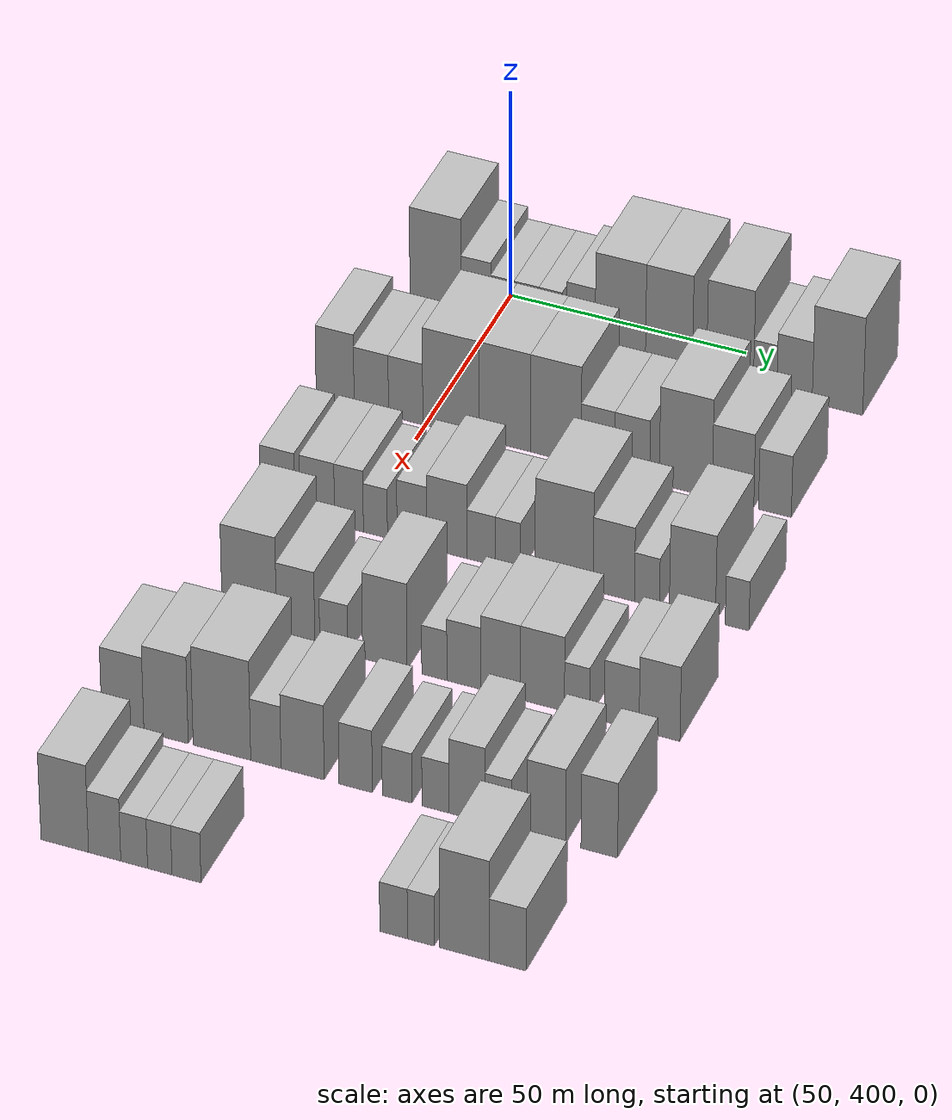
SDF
<sdf version="1.6">
 <world name="default">
  <model name="building_96">
   <static>1</static>
   <pose>50.0000 387.8352 0 0.000000 0.000000 0.000000</pose>
   <link name="link">
    <pose>0 0 12.00 0 0 0</pose>
    <collision name="collision"><geometry><box><size>20.0000 10.9163 24.0000</size></box></geometry></collision>
    <visual name="visual">
     <cast_shadows>0</cast_shadows>
     <geometry><box><size>20.0000 10.9163 24.0000</size></box></geometry>
     <material>
      <script>
       <uri>model://HANNAS_wall/materials/scripts</uri>
       <uri>model://HANNAS_wall/materials/textures</uri>
       <name>vrc/HANNAS_wall</name>
      </script>
     </material>
    </visual>
   </link>
  </model>
  <model name="building_97">
   <static>1</static>
   <pose>50.0000 396.4838 0 0.000000 0.000000 0.000000</pose>
   <link name="link">
    <pose>0 0 7.50 0 0 0</pose>
    <collision name="collision"><geometry><box><size>20.0000 6.3810 15.0000</size></box></geometry></collision>
    <visual name="visual">
     <cast_shadows>0</cast_shadows>
     <geometry><box><size>20.0000 6.3810 15.0000</size></box></geometry>
     <material>
      <script>
       <uri>model://HANNAS_wall/materials/scripts</uri>
       <uri>model://HANNAS_wall/materials/textures</uri>
       <name>vrc/HANNAS_wall</name>
      </script>
     </material>
    </visual>
   </link>
  </model>
  <model name="building_98">
   <static>1</static>
   <pose>50.0000 402.1761 0 0.000000 0.000000 0.000000</pose>
   <link name="link">
    <pose>0 0 6.00 0 0 0</pose>
    <collision name="collision"><geometry><box><size>20.0000 5.0036 12.0000</size></box></geometry></collision>
    <visual name="visual">
     <cast_shadows>0</cast_shadows>
     <geometry><box><size>20.0000 5.0036 12.0000</size></box></geometry>
     <material>
      <script>
       <uri>model://HANNAS_wall/materials/scripts</uri>
       <uri>model://HANNAS_wall/materials/textures</uri>
       <name>vrc/HANNAS_wall</name>
      </script>
     </material>
    </visual>
   </link>
  </model>
  <model name="building_99">
   <static>1</static>
   <pose>50.0000 407.3361 0 0.000000 0.000000 0.000000</pose>
   <link name="link">
    <pose>0 0 6.00 0 0 0</pose>
    <collision name="collision"><geometry><box><size>20.0000 5.3164 12.0000</size></box></geometry></collision>
    <visual name="visual">
     <cast_shadows>0</cast_shadows>
     <geometry><box><size>20.0000 5.3164 12.0000</size></box></geometry>
     <material>
      <script>
       <uri>model://HANNAS_wall/materials/scripts</uri>
       <uri>model://HANNAS_wall/materials/textures</uri>
       <name>vrc/HANNAS_wall</name>
      </script>
     </material>
    </visual>
   </link>
  </model>
  <model name="building_100">
   <static>1</static>
   <pose>50.0000 412.4505 0 0.000000 0.000000 0.000000</pose>
   <link name="link">
    <pose>0 0 6.00 0 0 0</pose>
    <collision name="collision"><geometry><box><size>20.0000 4.9125 12.0000</size></box></geometry></collision>
    <visual name="visual">
     <cast_shadows>0</cast_shadows>
     <geometry><box><size>20.0000 4.9125 12.0000</size></box></geometry>
     <material>
      <script>
       <uri>model://HANNAS_wall/materials/scripts</uri>
       <uri>model://HANNAS_wall/materials/textures</uri>
       <name>vrc/HANNAS_wall</name>
      </script>
     </material>
    </visual>
   </link>
  </model>
  <model name="building_101">
   <static>1</static>
   <pose>50.0000 418.9141 0 0.000000 0.000000 0.000000</pose>
   <link name="link">
    <pose>0 0 7.50 0 0 0</pose>
    <collision name="collision"><geometry><box><size>20.0000 6.0148 15.0000</size></box></geometry></collision>
    <visual name="visual">
     <cast_shadows>0</cast_shadows>
     <geometry><box><size>20.0000 6.0148 15.0000</size></box></geometry>
     <material>
      <script>
       <uri>model://HANNAS_wall/materials/scripts</uri>
       <uri>model://HANNAS_wall/materials/textures</uri>
       <name>vrc/HANNAS_wall</name>
      </script>
     </material>
    </visual>
   </link>
  </model>
  <model name="building_102">
   <static>1</static>
   <pose>50.0000 427.2536 0 0.000000 0.000000 0.000000</pose>
   <link name="link">
    <pose>0 0 12.00 0 0 0</pose>
    <collision name="collision"><geometry><box><size>20.0000 10.6642 24.0000</size></box></geometry></collision>
    <visual name="visual">
     <cast_shadows>0</cast_shadows>
     <geometry><box><size>20.0000 10.6642 24.0000</size></box></geometry>
     <material>
      <script>
       <uri>model://HANNAS_wall/materials/scripts</uri>
       <uri>model://HANNAS_wall/materials/textures</uri>
       <name>vrc/HANNAS_wall</name>
      </script>
     </material>
    </visual>
   </link>
  </model>
  <model name="building_103">
   <static>1</static>
   <pose>50.0000 437.5339 0 0.000000 0.000000 0.000000</pose>
   <link name="link">
    <pose>0 0 12.00 0 0 0</pose>
    <collision name="collision"><geometry><box><size>20.0000 9.8964 24.0000</size></box></geometry></collision>
    <visual name="visual">
     <cast_shadows>0</cast_shadows>
     <geometry><box><size>20.0000 9.8964 24.0000</size></box></geometry>
     <material>
      <script>
       <uri>model://HANNAS_wall/materials/scripts</uri>
       <uri>model://HANNAS_wall/materials/textures</uri>
       <name>vrc/HANNAS_wall</name>
      </script>
     </material>
    </visual>
   </link>
  </model>
  <model name="building_104">
   <static>1</static>
   <pose>50.0000 450.4023 0 0.000000 0.000000 0.000000</pose>
   <link name="link">
    <pose>0 0 12.00 0 0 0</pose>
    <collision name="collision"><geometry><box><size>20.0000 9.8404 24.0000</size></box></geometry></collision>
    <visual name="visual">
     <cast_shadows>0</cast_shadows>
     <geometry><box><size>20.0000 9.8404 24.0000</size></box></geometry>
     <material>
      <script>
       <uri>model://HANNAS_wall/materials/scripts</uri>
       <uri>model://HANNAS_wall/materials/textures</uri>
       <name>vrc/HANNAS_wall</name>
      </script>
     </material>
    </visual>
   </link>
  </model>
  <model name="building_105">
   <static>1</static>
   <pose>50.0000 457.7745 0 0.000000 0.000000 0.000000</pose>
   <link name="link">
    <pose>0 0 6.00 0 0 0</pose>
    <collision name="collision"><geometry><box><size>20.0000 4.9039 12.0000</size></box></geometry></collision>
    <visual name="visual">
     <cast_shadows>0</cast_shadows>
     <geometry><box><size>20.0000 4.9039 12.0000</size></box></geometry>
     <material>
      <script>
       <uri>model://HANNAS_wall/materials/scripts</uri>
       <uri>model://HANNAS_wall/materials/textures</uri>
       <name>vrc/HANNAS_wall</name>
      </script>
     </material>
    </visual>
   </link>
  </model>
  <model name="building_106">
   <static>1</static>
   <pose>50.0000 463.9349 0 0.000000 0.000000 0.000000</pose>
   <link name="link">
    <pose>0 0 7.50 0 0 0</pose>
    <collision name="collision"><geometry><box><size>20.0000 7.4169 15.0000</size></box></geometry></collision>
    <visual name="visual">
     <cast_shadows>0</cast_shadows>
     <geometry><box><size>20.0000 7.4169 15.0000</size></box></geometry>
     <material>
      <script>
       <uri>model://HANNAS_wall/materials/scripts</uri>
       <uri>model://HANNAS_wall/materials/textures</uri>
       <name>vrc/HANNAS_wall</name>
      </script>
     </material>
    </visual>
   </link>
  </model>
  <model name="building_107">
   <static>1</static>
   <pose>50.0000 472.9136 0 0.000000 0.000000 0.000000</pose>
   <link name="link">
    <pose>0 0 12.00 0 0 0</pose>
    <collision name="collision"><geometry><box><size>20.0000 10.5405 24.0000</size></box></geometry></collision>
    <visual name="visual">
     <cast_shadows>0</cast_shadows>
     <geometry><box><size>20.0000 10.5405 24.0000</size></box></geometry>
     <material>
      <script>
       <uri>model://HANNAS_wall/materials/scripts</uri>
       <uri>model://HANNAS_wall/materials/textures</uri>
       <name>vrc/HANNAS_wall</name>
      </script>
     </material>
    </visual>
   </link>
  </model>
  <model name="building_221">
   <static>1</static>
   <pose>85.0000 380.9296 0 0.000000 0.000000 0.000000</pose>
   <link name="link">
    <pose>0 0 9.00 0 0 0</pose>
    <collision name="collision"><geometry><box><size>20.0000 8.0621 18.0000</size></box></geometry></collision>
    <visual name="visual">
     <cast_shadows>0</cast_shadows>
     <geometry><box><size>20.0000 8.0621 18.0000</size></box></geometry>
     <material>
      <script>
       <uri>model://HANNAS_wall/materials/scripts</uri>
       <uri>model://HANNAS_wall/materials/textures</uri>
       <name>vrc/HANNAS_wall</name>
      </script>
     </material>
    </visual>
   </link>
  </model>
  <model name="building_222">
   <static>1</static>
   <pose>85.0000 388.6045 0 0.000000 0.000000 0.000000</pose>
   <link name="link">
    <pose>0 0 7.50 0 0 0</pose>
    <collision name="collision"><geometry><box><size>20.0000 7.2877 15.0000</size></box></geometry></collision>
    <visual name="visual">
     <cast_shadows>0</cast_shadows>
     <geometry><box><size>20.0000 7.2877 15.0000</size></box></geometry>
     <material>
      <script>
       <uri>model://HANNAS_wall/materials/scripts</uri>
       <uri>model://HANNAS_wall/materials/textures</uri>
       <name>vrc/HANNAS_wall</name>
      </script>
     </material>
    </visual>
   </link>
  </model>
  <model name="building_223">
   <static>1</static>
   <pose>85.0000 395.8790 0 0.000000 0.000000 0.000000</pose>
   <link name="link">
    <pose>0 0 7.50 0 0 0</pose>
    <collision name="collision"><geometry><box><size>20.0000 7.2612 15.0000</size></box></geometry></collision>
    <visual name="visual">
     <cast_shadows>0</cast_shadows>
     <geometry><box><size>20.0000 7.2612 15.0000</size></box></geometry>
     <material>
      <script>
       <uri>model://HANNAS_wall/materials/scripts</uri>
       <uri>model://HANNAS_wall/materials/textures</uri>
       <name>vrc/HANNAS_wall</name>
      </script>
     </material>
    </visual>
   </link>
  </model>
  <model name="building_224">
   <static>1</static>
   <pose>85.0000 405.4130 0 0.000000 0.000000 0.000000</pose>
   <link name="link">
    <pose>0 0 12.00 0 0 0</pose>
    <collision name="collision"><geometry><box><size>20.0000 11.8067 24.0000</size></box></geometry></collision>
    <visual name="visual">
     <cast_shadows>0</cast_shadows>
     <geometry><box><size>20.0000 11.8067 24.0000</size></box></geometry>
     <material>
      <script>
       <uri>model://HANNAS_wall/materials/scripts</uri>
       <uri>model://HANNAS_wall/materials/textures</uri>
       <name>vrc/HANNAS_wall</name>
      </script>
     </material>
    </visual>
   </link>
  </model>
  <model name="building_225">
   <static>1</static>
   <pose>85.0000 416.7166 0 0.000000 0.000000 0.000000</pose>
   <link name="link">
    <pose>0 0 12.00 0 0 0</pose>
    <collision name="collision"><geometry><box><size>20.0000 10.8004 24.0000</size></box></geometry></collision>
    <visual name="visual">
     <cast_shadows>0</cast_shadows>
     <geometry><box><size>20.0000 10.8004 24.0000</size></box></geometry>
     <material>
      <script>
       <uri>model://HANNAS_wall/materials/scripts</uri>
       <uri>model://HANNAS_wall/materials/textures</uri>
       <name>vrc/HANNAS_wall</name>
      </script>
     </material>
    </visual>
   </link>
  </model>
  <model name="building_226">
   <static>1</static>
   <pose>85.0000 427.4245 0 0.000000 0.000000 0.000000</pose>
   <link name="link">
    <pose>0 0 12.00 0 0 0</pose>
    <collision name="collision"><geometry><box><size>20.0000 10.6154 24.0000</size></box></geometry></collision>
    <visual name="visual">
     <cast_shadows>0</cast_shadows>
     <geometry><box><size>20.0000 10.6154 24.0000</size></box></geometry>
     <material>
      <script>
       <uri>model://HANNAS_wall/materials/scripts</uri>
       <uri>model://HANNAS_wall/materials/textures</uri>
       <name>vrc/HANNAS_wall</name>
      </script>
     </material>
    </visual>
   </link>
  </model>
  <model name="building_227">
   <static>1</static>
   <pose>85.0000 436.2360 0 0.000000 0.000000 0.000000</pose>
   <link name="link">
    <pose>0 0 7.50 0 0 0</pose>
    <collision name="collision"><geometry><box><size>20.0000 7.0078 15.0000</size></box></geometry></collision>
    <visual name="visual">
     <cast_shadows>0</cast_shadows>
     <geometry><box><size>20.0000 7.0078 15.0000</size></box></geometry>
     <material>
      <script>
       <uri>model://HANNAS_wall/materials/scripts</uri>
       <uri>model://HANNAS_wall/materials/textures</uri>
       <name>vrc/HANNAS_wall</name>
      </script>
     </material>
    </visual>
   </link>
  </model>
  <model name="building_228">
   <static>1</static>
   <pose>85.0000 443.3682 0 0.000000 0.000000 0.000000</pose>
   <link name="link">
    <pose>0 0 7.50 0 0 0</pose>
    <collision name="collision"><geometry><box><size>20.0000 7.2565 15.0000</size></box></geometry></collision>
    <visual name="visual">
     <cast_shadows>0</cast_shadows>
     <geometry><box><size>20.0000 7.2565 15.0000</size></box></geometry>
     <material>
      <script>
       <uri>model://HANNAS_wall/materials/scripts</uri>
       <uri>model://HANNAS_wall/materials/textures</uri>
       <name>vrc/HANNAS_wall</name>
      </script>
     </material>
    </visual>
   </link>
  </model>
  <model name="building_229">
   <static>1</static>
   <pose>85.0000 454.4709 0 0.000000 0.000000 0.000000</pose>
   <link name="link">
    <pose>0 0 12.00 0 0 0</pose>
    <collision name="collision"><geometry><box><size>20.0000 10.9488 24.0000</size></box></geometry></collision>
    <visual name="visual">
     <cast_shadows>0</cast_shadows>
     <geometry><box><size>20.0000 10.9488 24.0000</size></box></geometry>
     <material>
      <script>
       <uri>model://HANNAS_wall/materials/scripts</uri>
       <uri>model://HANNAS_wall/materials/textures</uri>
       <name>vrc/HANNAS_wall</name>
      </script>
     </material>
    </visual>
   </link>
  </model>
  <model name="building_230">
   <static>1</static>
   <pose>85.0000 464.2405 0 0.000000 0.000000 0.000000</pose>
   <link name="link">
    <pose>0 0 9.00 0 0 0</pose>
    <collision name="collision"><geometry><box><size>20.0000 8.5903 18.0000</size></box></geometry></collision>
    <visual name="visual">
     <cast_shadows>0</cast_shadows>
     <geometry><box><size>20.0000 8.5903 18.0000</size></box></geometry>
     <material>
      <script>
       <uri>model://HANNAS_wall/materials/scripts</uri>
       <uri>model://HANNAS_wall/materials/textures</uri>
       <name>vrc/HANNAS_wall</name>
      </script>
     </material>
    </visual>
   </link>
  </model>
  <model name="building_231">
   <static>1</static>
   <pose>85.0000 472.9121 0 0.000000 0.000000 0.000000</pose>
   <link name="link">
    <pose>0 0 7.50 0 0 0</pose>
    <collision name="collision"><geometry><box><size>20.0000 6.7528 15.0000</size></box></geometry></collision>
    <visual name="visual">
     <cast_shadows>0</cast_shadows>
     <geometry><box><size>20.0000 6.7528 15.0000</size></box></geometry>
     <material>
      <script>
       <uri>model://HANNAS_wall/materials/scripts</uri>
       <uri>model://HANNAS_wall/materials/textures</uri>
       <name>vrc/HANNAS_wall</name>
      </script>
     </material>
    </visual>
   </link>
  </model>
  <model name="building_340">
   <static>1</static>
   <pose>120.0000 383.6018 0 0.000000 0.000000 0.000000</pose>
   <link name="link">
    <pose>0 0 7.50 0 0 0</pose>
    <collision name="collision"><geometry><box><size>20.0000 7.2635 15.0000</size></box></geometry></collision>
    <visual name="visual">
     <cast_shadows>0</cast_shadows>
     <geometry><box><size>20.0000 7.2635 15.0000</size></box></geometry>
     <material>
      <script>
       <uri>model://HANNAS_wall/materials/scripts</uri>
       <uri>model://HANNAS_wall/materials/textures</uri>
       <name>vrc/HANNAS_wall</name>
      </script>
     </material>
    </visual>
   </link>
  </model>
  <model name="building_341">
   <static>1</static>
   <pose>120.0000 391.8772 0 0.000000 0.000000 0.000000</pose>
   <link name="link">
    <pose>0 0 7.50 0 0 0</pose>
    <collision name="collision"><geometry><box><size>20.0000 7.2875 15.0000</size></box></geometry></collision>
    <visual name="visual">
     <cast_shadows>0</cast_shadows>
     <geometry><box><size>20.0000 7.2875 15.0000</size></box></geometry>
     <material>
      <script>
       <uri>model://HANNAS_wall/materials/scripts</uri>
       <uri>model://HANNAS_wall/materials/textures</uri>
       <name>vrc/HANNAS_wall</name>
      </script>
     </material>
    </visual>
   </link>
  </model>
  <model name="building_342">
   <static>1</static>
   <pose>120.0000 398.5246 0 0.000000 0.000000 0.000000</pose>
   <link name="link">
    <pose>0 0 7.50 0 0 0</pose>
    <collision name="collision"><geometry><box><size>20.0000 6.0073 15.0000</size></box></geometry></collision>
    <visual name="visual">
     <cast_shadows>0</cast_shadows>
     <geometry><box><size>20.0000 6.0073 15.0000</size></box></geometry>
     <material>
      <script>
       <uri>model://HANNAS_wall/materials/scripts</uri>
       <uri>model://HANNAS_wall/materials/textures</uri>
       <name>vrc/HANNAS_wall</name>
      </script>
     </material>
    </visual>
   </link>
  </model>
  <model name="building_343">
   <static>1</static>
   <pose>120.0000 404.0325 0 0.000000 0.000000 0.000000</pose>
   <link name="link">
    <pose>0 0 6.00 0 0 0</pose>
    <collision name="collision"><geometry><box><size>20.0000 5.0084 12.0000</size></box></geometry></collision>
    <visual name="visual">
     <cast_shadows>0</cast_shadows>
     <geometry><box><size>20.0000 5.0084 12.0000</size></box></geometry>
     <material>
      <script>
       <uri>model://HANNAS_wall/materials/scripts</uri>
       <uri>model://HANNAS_wall/materials/textures</uri>
       <name>vrc/HANNAS_wall</name>
      </script>
     </material>
    </visual>
   </link>
  </model>
  <model name="building_344">
   <static>1</static>
   <pose>120.0000 411.6304 0 0.000000 0.000000 0.000000</pose>
   <link name="link">
    <pose>0 0 7.50 0 0 0</pose>
    <collision name="collision"><geometry><box><size>20.0000 6.1874 15.0000</size></box></geometry></collision>
    <visual name="visual">
     <cast_shadows>0</cast_shadows>
     <geometry><box><size>20.0000 6.1874 15.0000</size></box></geometry>
     <material>
      <script>
       <uri>model://HANNAS_wall/materials/scripts</uri>
       <uri>model://HANNAS_wall/materials/textures</uri>
       <name>vrc/HANNAS_wall</name>
      </script>
     </material>
    </visual>
   </link>
  </model>
  <model name="building_345">
   <static>1</static>
   <pose>120.0000 418.8709 0 0.000000 0.000000 0.000000</pose>
   <link name="link">
    <pose>0 0 9.00 0 0 0</pose>
    <collision name="collision"><geometry><box><size>20.0000 8.2938 18.0000</size></box></geometry></collision>
    <visual name="visual">
     <cast_shadows>0</cast_shadows>
     <geometry><box><size>20.0000 8.2938 18.0000</size></box></geometry>
     <material>
      <script>
       <uri>model://HANNAS_wall/materials/scripts</uri>
       <uri>model://HANNAS_wall/materials/textures</uri>
       <name>vrc/HANNAS_wall</name>
      </script>
     </material>
    </visual>
   </link>
  </model>
  <model name="building_346">
   <static>1</static>
   <pose>120.0000 425.9234 0 0.000000 0.000000 0.000000</pose>
   <link name="link">
    <pose>0 0 6.00 0 0 0</pose>
    <collision name="collision"><geometry><box><size>20.0000 5.8113 12.0000</size></box></geometry></collision>
    <visual name="visual">
     <cast_shadows>0</cast_shadows>
     <geometry><box><size>20.0000 5.8113 12.0000</size></box></geometry>
     <material>
      <script>
       <uri>model://HANNAS_wall/materials/scripts</uri>
       <uri>model://HANNAS_wall/materials/textures</uri>
       <name>vrc/HANNAS_wall</name>
      </script>
     </material>
    </visual>
   </link>
  </model>
  <model name="building_347">
   <static>1</static>
   <pose>120.0000 431.4433 0 0.000000 0.000000 0.000000</pose>
   <link name="link">
    <pose>0 0 6.00 0 0 0</pose>
    <collision name="collision"><geometry><box><size>20.0000 5.2284 12.0000</size></box></geometry></collision>
    <visual name="visual">
     <cast_shadows>0</cast_shadows>
     <geometry><box><size>20.0000 5.2284 12.0000</size></box></geometry>
     <material>
      <script>
       <uri>model://HANNAS_wall/materials/scripts</uri>
       <uri>model://HANNAS_wall/materials/textures</uri>
       <name>vrc/HANNAS_wall</name>
      </script>
     </material>
    </visual>
   </link>
  </model>
  <model name="building_348">
   <static>1</static>
   <pose>120.0000 443.0263 0 0.000000 0.000000 0.000000</pose>
   <link name="link">
    <pose>0 0 12.00 0 0 0</pose>
    <collision name="collision"><geometry><box><size>20.0000 11.9377 24.0000</size></box></geometry></collision>
    <visual name="visual">
     <cast_shadows>0</cast_shadows>
     <geometry><box><size>20.0000 11.9377 24.0000</size></box></geometry>
     <material>
      <script>
       <uri>model://HANNAS_wall/materials/scripts</uri>
       <uri>model://HANNAS_wall/materials/textures</uri>
       <name>vrc/HANNAS_wall</name>
      </script>
     </material>
    </visual>
   </link>
  </model>
  <model name="building_349">
   <static>1</static>
   <pose>120.0000 453.2117 0 0.000000 0.000000 0.000000</pose>
   <link name="link">
    <pose>0 0 9.00 0 0 0</pose>
    <collision name="collision"><geometry><box><size>20.0000 8.4332 18.0000</size></box></geometry></collision>
    <visual name="visual">
     <cast_shadows>0</cast_shadows>
     <geometry><box><size>20.0000 8.4332 18.0000</size></box></geometry>
     <material>
      <script>
       <uri>model://HANNAS_wall/materials/scripts</uri>
       <uri>model://HANNAS_wall/materials/textures</uri>
       <name>vrc/HANNAS_wall</name>
      </script>
     </material>
    </visual>
   </link>
  </model>
  <model name="building_350">
   <static>1</static>
   <pose>120.0000 459.9859 0 0.000000 0.000000 0.000000</pose>
   <link name="link">
    <pose>0 0 6.00 0 0 0</pose>
    <collision name="collision"><geometry><box><size>20.0000 5.1151 12.0000</size></box></geometry></collision>
    <visual name="visual">
     <cast_shadows>0</cast_shadows>
     <geometry><box><size>20.0000 5.1151 12.0000</size></box></geometry>
     <material>
      <script>
       <uri>model://HANNAS_wall/materials/scripts</uri>
       <uri>model://HANNAS_wall/materials/textures</uri>
       <name>vrc/HANNAS_wall</name>
      </script>
     </material>
    </visual>
   </link>
  </model>
  <model name="building_351">
   <static>1</static>
   <pose>120.0000 469.2322 0 0.000000 0.000000 0.000000</pose>
   <link name="link">
    <pose>0 0 10.50 0 0 0</pose>
    <collision name="collision"><geometry><box><size>20.0000 9.3776 21.0000</size></box></geometry></collision>
    <visual name="visual">
     <cast_shadows>0</cast_shadows>
     <geometry><box><size>20.0000 9.3776 21.0000</size></box></geometry>
     <material>
      <script>
       <uri>model://HANNAS_wall/materials/scripts</uri>
       <uri>model://HANNAS_wall/materials/textures</uri>
       <name>vrc/HANNAS_wall</name>
      </script>
     </material>
    </visual>
   </link>
  </model>
  <model name="building_352">
   <static>1</static>
   <pose>120.0000 478.3220 0 0.000000 0.000000 0.000000</pose>
   <link name="link">
    <pose>0 0 6.00 0 0 0</pose>
    <collision name="collision"><geometry><box><size>20.0000 4.8021 12.0000</size></box></geometry></collision>
    <visual name="visual">
     <cast_shadows>0</cast_shadows>
     <geometry><box><size>20.0000 4.8021 12.0000</size></box></geometry>
     <material>
      <script>
       <uri>model://HANNAS_wall/materials/scripts</uri>
       <uri>model://HANNAS_wall/materials/textures</uri>
       <name>vrc/HANNAS_wall</name>
      </script>
     </material>
    </visual>
   </link>
  </model>
  <model name="building_465">
   <static>1</static>
   <pose>155.0000 392.7348 0 0.000000 0.000000 0.000000</pose>
   <link name="link">
    <pose>0 0 12.00 0 0 0</pose>
    <collision name="collision"><geometry><box><size>20.0000 11.2092 24.0000</size></box></geometry></collision>
    <visual name="visual">
     <cast_shadows>0</cast_shadows>
     <geometry><box><size>20.0000 11.2092 24.0000</size></box></geometry>
     <material>
      <script>
       <uri>model://HANNAS_wall/materials/scripts</uri>
       <uri>model://HANNAS_wall/materials/textures</uri>
       <name>vrc/HANNAS_wall</name>
      </script>
     </material>
    </visual>
   </link>
  </model>
  <model name="building_466">
   <static>1</static>
   <pose>155.0000 402.2637 0 0.000000 0.000000 0.000000</pose>
   <link name="link">
    <pose>0 0 9.00 0 0 0</pose>
    <collision name="collision"><geometry><box><size>20.0000 7.8486 18.0000</size></box></geometry></collision>
    <visual name="visual">
     <cast_shadows>0</cast_shadows>
     <geometry><box><size>20.0000 7.8486 18.0000</size></box></geometry>
     <material>
      <script>
       <uri>model://HANNAS_wall/materials/scripts</uri>
       <uri>model://HANNAS_wall/materials/textures</uri>
       <name>vrc/HANNAS_wall</name>
      </script>
     </material>
    </visual>
   </link>
  </model>
  <model name="building_467">
   <static>1</static>
   <pose>155.0000 410.0770 0 0.000000 0.000000 0.000000</pose>
   <link name="link">
    <pose>0 0 6.00 0 0 0</pose>
    <collision name="collision"><geometry><box><size>20.0000 5.7780 12.0000</size></box></geometry></collision>
    <visual name="visual">
     <cast_shadows>0</cast_shadows>
     <geometry><box><size>20.0000 5.7780 12.0000</size></box></geometry>
     <material>
      <script>
       <uri>model://HANNAS_wall/materials/scripts</uri>
       <uri>model://HANNAS_wall/materials/textures</uri>
       <name>vrc/HANNAS_wall</name>
      </script>
     </material>
    </visual>
   </link>
  </model>
  <model name="building_468">
   <static>1</static>
   <pose>155.0000 420.5101 0 0.000000 0.000000 0.000000</pose>
   <link name="link">
    <pose>0 0 10.50 0 0 0</pose>
    <collision name="collision"><geometry><box><size>20.0000 9.0881 21.0000</size></box></geometry></collision>
    <visual name="visual">
     <cast_shadows>0</cast_shadows>
     <geometry><box><size>20.0000 9.0881 21.0000</size></box></geometry>
     <material>
      <script>
       <uri>model://HANNAS_wall/materials/scripts</uri>
       <uri>model://HANNAS_wall/materials/textures</uri>
       <name>vrc/HANNAS_wall</name>
      </script>
     </material>
    </visual>
   </link>
  </model>
  <model name="building_469">
   <static>1</static>
   <pose>155.0000 430.6046 0 0.000000 0.000000 0.000000</pose>
   <link name="link">
    <pose>0 0 6.00 0 0 0</pose>
    <collision name="collision"><geometry><box><size>20.0000 5.1009 12.0000</size></box></geometry></collision>
    <visual name="visual">
     <cast_shadows>0</cast_shadows>
     <geometry><box><size>20.0000 5.1009 12.0000</size></box></geometry>
     <material>
      <script>
       <uri>model://HANNAS_wall/materials/scripts</uri>
       <uri>model://HANNAS_wall/materials/textures</uri>
       <name>vrc/HANNAS_wall</name>
      </script>
     </material>
    </visual>
   </link>
  </model>
  <model name="building_470">
   <static>1</static>
   <pose>155.0000 436.6073 0 0.000000 0.000000 0.000000</pose>
   <link name="link">
    <pose>0 0 7.50 0 0 0</pose>
    <collision name="collision"><geometry><box><size>20.0000 6.9045 15.0000</size></box></geometry></collision>
    <visual name="visual">
     <cast_shadows>0</cast_shadows>
     <geometry><box><size>20.0000 6.9045 15.0000</size></box></geometry>
     <material>
      <script>
       <uri>model://HANNAS_wall/materials/scripts</uri>
       <uri>model://HANNAS_wall/materials/textures</uri>
       <name>vrc/HANNAS_wall</name>
      </script>
     </material>
    </visual>
   </link>
  </model>
  <model name="building_471">
   <static>1</static>
   <pose>155.0000 444.0570 0 0.000000 0.000000 0.000000</pose>
   <link name="link">
    <pose>0 0 9.00 0 0 0</pose>
    <collision name="collision"><geometry><box><size>20.0000 7.9950 18.0000</size></box></geometry></collision>
    <visual name="visual">
     <cast_shadows>0</cast_shadows>
     <geometry><box><size>20.0000 7.9950 18.0000</size></box></geometry>
     <material>
      <script>
       <uri>model://HANNAS_wall/materials/scripts</uri>
       <uri>model://HANNAS_wall/materials/textures</uri>
       <name>vrc/HANNAS_wall</name>
      </script>
     </material>
    </visual>
   </link>
  </model>
  <model name="building_472">
   <static>1</static>
   <pose>155.0000 452.4953 0 0.000000 0.000000 0.000000</pose>
   <link name="link">
    <pose>0 0 9.00 0 0 0</pose>
    <collision name="collision"><geometry><box><size>20.0000 8.8818 18.0000</size></box></geometry></collision>
    <visual name="visual">
     <cast_shadows>0</cast_shadows>
     <geometry><box><size>20.0000 8.8818 18.0000</size></box></geometry>
     <material>
      <script>
       <uri>model://HANNAS_wall/materials/scripts</uri>
       <uri>model://HANNAS_wall/materials/textures</uri>
       <name>vrc/HANNAS_wall</name>
      </script>
     </material>
    </visual>
   </link>
  </model>
  <model name="building_473">
   <static>1</static>
   <pose>155.0000 459.4628 0 0.000000 0.000000 0.000000</pose>
   <link name="link">
    <pose>0 0 6.00 0 0 0</pose>
    <collision name="collision"><geometry><box><size>20.0000 5.0532 12.0000</size></box></geometry></collision>
    <visual name="visual">
     <cast_shadows>0</cast_shadows>
     <geometry><box><size>20.0000 5.0532 12.0000</size></box></geometry>
     <material>
      <script>
       <uri>model://HANNAS_wall/materials/scripts</uri>
       <uri>model://HANNAS_wall/materials/textures</uri>
       <name>vrc/HANNAS_wall</name>
      </script>
     </material>
    </visual>
   </link>
  </model>
  <model name="building_474">
   <static>1</static>
   <pose>155.0000 468.4685 0 0.000000 0.000000 0.000000</pose>
   <link name="link">
    <pose>0 0 7.50 0 0 0</pose>
    <collision name="collision"><geometry><box><size>20.0000 6.9582 15.0000</size></box></geometry></collision>
    <visual name="visual">
     <cast_shadows>0</cast_shadows>
     <geometry><box><size>20.0000 6.9582 15.0000</size></box></geometry>
     <material>
      <script>
       <uri>model://HANNAS_wall/materials/scripts</uri>
       <uri>model://HANNAS_wall/materials/textures</uri>
       <name>vrc/HANNAS_wall</name>
      </script>
     </material>
    </visual>
   </link>
  </model>
  <model name="building_475">
   <static>1</static>
   <pose>155.0000 476.0428 0 0.000000 0.000000 0.000000</pose>
   <link name="link">
    <pose>0 0 9.00 0 0 0</pose>
    <collision name="collision"><geometry><box><size>20.0000 8.1904 18.0000</size></box></geometry></collision>
    <visual name="visual">
     <cast_shadows>0</cast_shadows>
     <geometry><box><size>20.0000 8.1904 18.0000</size></box></geometry>
     <material>
      <script>
       <uri>model://HANNAS_wall/materials/scripts</uri>
       <uri>model://HANNAS_wall/materials/textures</uri>
       <name>vrc/HANNAS_wall</name>
      </script>
     </material>
    </visual>
   </link>
  </model>
  <model name="building_591">
   <static>1</static>
   <pose>190.0000 382.0036 0 0.000000 0.000000 0.000000</pose>
   <link name="link">
    <pose>0 0 9.00 0 0 0</pose>
    <collision name="collision"><geometry><box><size>20.0000 8.5873 18.0000</size></box></geometry></collision>
    <visual name="visual">
     <cast_shadows>0</cast_shadows>
     <geometry><box><size>20.0000 8.5873 18.0000</size></box></geometry>
     <material>
      <script>
       <uri>model://HANNAS_wall/materials/scripts</uri>
       <uri>model://HANNAS_wall/materials/textures</uri>
       <name>vrc/HANNAS_wall</name>
      </script>
     </material>
    </visual>
   </link>
  </model>
  <model name="building_592">
   <static>1</static>
   <pose>190.0000 390.8131 0 0.000000 0.000000 0.000000</pose>
   <link name="link">
    <pose>0 0 10.50 0 0 0</pose>
    <collision name="collision"><geometry><box><size>20.0000 9.0319 21.0000</size></box></geometry></collision>
    <visual name="visual">
     <cast_shadows>0</cast_shadows>
     <geometry><box><size>20.0000 9.0319 21.0000</size></box></geometry>
     <material>
      <script>
       <uri>model://HANNAS_wall/materials/scripts</uri>
       <uri>model://HANNAS_wall/materials/textures</uri>
       <name>vrc/HANNAS_wall</name>
      </script>
     </material>
    </visual>
   </link>
  </model>
  <model name="building_593">
   <static>1</static>
   <pose>190.0000 402.1701 0 0.000000 0.000000 0.000000</pose>
   <link name="link">
    <pose>0 0 12.00 0 0 0</pose>
    <collision name="collision"><geometry><box><size>20.0000 11.6821 24.0000</size></box></geometry></collision>
    <visual name="visual">
     <cast_shadows>0</cast_shadows>
     <geometry><box><size>20.0000 11.6821 24.0000</size></box></geometry>
     <material>
      <script>
       <uri>model://HANNAS_wall/materials/scripts</uri>
       <uri>model://HANNAS_wall/materials/textures</uri>
       <name>vrc/HANNAS_wall</name>
      </script>
     </material>
    </visual>
   </link>
  </model>
  <model name="building_594">
   <static>1</static>
   <pose>190.0000 411.0871 0 0.000000 0.000000 0.000000</pose>
   <link name="link">
    <pose>0 0 7.50 0 0 0</pose>
    <collision name="collision"><geometry><box><size>20.0000 6.1519 15.0000</size></box></geometry></collision>
    <visual name="visual">
     <cast_shadows>0</cast_shadows>
     <geometry><box><size>20.0000 6.1519 15.0000</size></box></geometry>
     <material>
      <script>
       <uri>model://HANNAS_wall/materials/scripts</uri>
       <uri>model://HANNAS_wall/materials/textures</uri>
       <name>vrc/HANNAS_wall</name>
      </script>
     </material>
    </visual>
   </link>
  </model>
  <model name="building_595">
   <static>1</static>
   <pose>190.0000 418.5051 0 0.000000 0.000000 0.000000</pose>
   <link name="link">
    <pose>0 0 9.00 0 0 0</pose>
    <collision name="collision"><geometry><box><size>20.0000 8.6842 18.0000</size></box></geometry></collision>
    <visual name="visual">
     <cast_shadows>0</cast_shadows>
     <geometry><box><size>20.0000 8.6842 18.0000</size></box></geometry>
     <material>
      <script>
       <uri>model://HANNAS_wall/materials/scripts</uri>
       <uri>model://HANNAS_wall/materials/textures</uri>
       <name>vrc/HANNAS_wall</name>
      </script>
     </material>
    </visual>
   </link>
  </model>
  <model name="building_596">
   <static>1</static>
   <pose>190.0000 429.1849 0 0.000000 0.000000 0.000000</pose>
   <link name="link">
    <pose>0 0 7.50 0 0 0</pose>
    <collision name="collision"><geometry><box><size>20.0000 6.6754 15.0000</size></box></geometry></collision>
    <visual name="visual">
     <cast_shadows>0</cast_shadows>
     <geometry><box><size>20.0000 6.6754 15.0000</size></box></geometry>
     <material>
      <script>
       <uri>model://HANNAS_wall/materials/scripts</uri>
       <uri>model://HANNAS_wall/materials/textures</uri>
       <name>vrc/HANNAS_wall</name>
      </script>
     </material>
    </visual>
   </link>
  </model>
  <model name="building_597">
   <static>1</static>
   <pose>190.0000 437.4948 0 0.000000 0.000000 0.000000</pose>
   <link name="link">
    <pose>0 0 6.00 0 0 0</pose>
    <collision name="collision"><geometry><box><size>20.0000 5.9443 12.0000</size></box></geometry></collision>
    <visual name="visual">
     <cast_shadows>0</cast_shadows>
     <geometry><box><size>20.0000 5.9443 12.0000</size></box></geometry>
     <material>
      <script>
       <uri>model://HANNAS_wall/materials/scripts</uri>
       <uri>model://HANNAS_wall/materials/textures</uri>
       <name>vrc/HANNAS_wall</name>
      </script>
     </material>
    </visual>
   </link>
  </model>
  <model name="building_598">
   <static>1</static>
   <pose>190.0000 445.1444 0 0.000000 0.000000 0.000000</pose>
   <link name="link">
    <pose>0 0 6.00 0 0 0</pose>
    <collision name="collision"><geometry><box><size>20.0000 5.3549 12.0000</size></box></geometry></collision>
    <visual name="visual">
     <cast_shadows>0</cast_shadows>
     <geometry><box><size>20.0000 5.3549 12.0000</size></box></geometry>
     <material>
      <script>
       <uri>model://HANNAS_wall/materials/scripts</uri>
       <uri>model://HANNAS_wall/materials/textures</uri>
       <name>vrc/HANNAS_wall</name>
      </script>
     </material>
    </visual>
   </link>
  </model>
  <model name="building_599">
   <static>1</static>
   <pose>190.0000 451.4424 0 0.000000 0.000000 0.000000</pose>
   <link name="link">
    <pose>0 0 9.00 0 0 0</pose>
    <collision name="collision"><geometry><box><size>20.0000 7.2412 18.0000</size></box></geometry></collision>
    <visual name="visual">
     <cast_shadows>0</cast_shadows>
     <geometry><box><size>20.0000 7.2412 18.0000</size></box></geometry>
     <material>
      <script>
       <uri>model://HANNAS_wall/materials/scripts</uri>
       <uri>model://HANNAS_wall/materials/textures</uri>
       <name>vrc/HANNAS_wall</name>
      </script>
     </material>
    </visual>
   </link>
  </model>
  <model name="building_600">
   <static>1</static>
   <pose>190.0000 457.6907 0 0.000000 0.000000 0.000000</pose>
   <link name="link">
    <pose>0 0 6.00 0 0 0</pose>
    <collision name="collision"><geometry><box><size>20.0000 5.2555 12.0000</size></box></geometry></collision>
    <visual name="visual">
     <cast_shadows>0</cast_shadows>
     <geometry><box><size>20.0000 5.2555 12.0000</size></box></geometry>
     <material>
      <script>
       <uri>model://HANNAS_wall/materials/scripts</uri>
       <uri>model://HANNAS_wall/materials/textures</uri>
       <name>vrc/HANNAS_wall</name>
      </script>
     </material>
    </visual>
   </link>
  </model>
  <model name="building_601">
   <static>1</static>
   <pose>190.0000 467.1919 0 0.000000 0.000000 0.000000</pose>
   <link name="link">
    <pose>0 0 9.00 0 0 0</pose>
    <collision name="collision"><geometry><box><size>20.0000 7.7469 18.0000</size></box></geometry></collision>
    <visual name="visual">
     <cast_shadows>0</cast_shadows>
     <geometry><box><size>20.0000 7.7469 18.0000</size></box></geometry>
     <material>
      <script>
       <uri>model://HANNAS_wall/materials/scripts</uri>
       <uri>model://HANNAS_wall/materials/textures</uri>
       <name>vrc/HANNAS_wall</name>
      </script>
     </material>
    </visual>
   </link>
  </model>
  <model name="building_602">
   <static>1</static>
   <pose>190.0000 477.6751 0 0.000000 0.000000 0.000000</pose>
   <link name="link">
    <pose>0 0 9.00 0 0 0</pose>
    <collision name="collision"><geometry><box><size>20.0000 7.2195 18.0000</size></box></geometry></collision>
    <visual name="visual">
     <cast_shadows>0</cast_shadows>
     <geometry><box><size>20.0000 7.2195 18.0000</size></box></geometry>
     <material>
      <script>
       <uri>model://HANNAS_wall/materials/scripts</uri>
       <uri>model://HANNAS_wall/materials/textures</uri>
       <name>vrc/HANNAS_wall</name>
      </script>
     </material>
    </visual>
   </link>
  </model>
  <model name="building_725">
   <static>1</static>
   <pose>225.0000 385.8393 0 0.000000 0.000000 0.000000</pose>
   <link name="link">
    <pose>0 0 10.50 0 0 0</pose>
    <collision name="collision"><geometry><box><size>20.0000 9.5818 21.0000</size></box></geometry></collision>
    <visual name="visual">
     <cast_shadows>0</cast_shadows>
     <geometry><box><size>20.0000 9.5818 21.0000</size></box></geometry>
     <material>
      <script>
       <uri>model://HANNAS_wall/materials/scripts</uri>
       <uri>model://HANNAS_wall/materials/textures</uri>
       <name>vrc/HANNAS_wall</name>
      </script>
     </material>
    </visual>
   </link>
  </model>
  <model name="building_726">
   <static>1</static>
   <pose>225.0000 393.8644 0 0.000000 0.000000 0.000000</pose>
   <link name="link">
    <pose>0 0 7.50 0 0 0</pose>
    <collision name="collision"><geometry><box><size>20.0000 6.4683 15.0000</size></box></geometry></collision>
    <visual name="visual">
     <cast_shadows>0</cast_shadows>
     <geometry><box><size>20.0000 6.4683 15.0000</size></box></geometry>
     <material>
      <script>
       <uri>model://HANNAS_wall/materials/scripts</uri>
       <uri>model://HANNAS_wall/materials/textures</uri>
       <name>vrc/HANNAS_wall</name>
      </script>
     </material>
    </visual>
   </link>
  </model>
  <model name="building_727">
   <static>1</static>
   <pose>225.0000 399.7782 0 0.000000 0.000000 0.000000</pose>
   <link name="link">
    <pose>0 0 6.00 0 0 0</pose>
    <collision name="collision"><geometry><box><size>20.0000 5.3594 12.0000</size></box></geometry></collision>
    <visual name="visual">
     <cast_shadows>0</cast_shadows>
     <geometry><box><size>20.0000 5.3594 12.0000</size></box></geometry>
     <material>
      <script>
       <uri>model://HANNAS_wall/materials/scripts</uri>
       <uri>model://HANNAS_wall/materials/textures</uri>
       <name>vrc/HANNAS_wall</name>
      </script>
     </material>
    </visual>
   </link>
  </model>
  <model name="building_728">
   <static>1</static>
   <pose>225.0000 404.9036 0 0.000000 0.000000 0.000000</pose>
   <link name="link">
    <pose>0 0 6.00 0 0 0</pose>
    <collision name="collision"><geometry><box><size>20.0000 4.8915 12.0000</size></box></geometry></collision>
    <visual name="visual">
     <cast_shadows>0</cast_shadows>
     <geometry><box><size>20.0000 4.8915 12.0000</size></box></geometry>
     <material>
      <script>
       <uri>model://HANNAS_wall/materials/scripts</uri>
       <uri>model://HANNAS_wall/materials/textures</uri>
       <name>vrc/HANNAS_wall</name>
      </script>
     </material>
    </visual>
   </link>
  </model>
  <model name="building_729">
   <static>1</static>
   <pose>225.0000 410.2439 0 0.000000 0.000000 0.000000</pose>
   <link name="link">
    <pose>0 0 6.00 0 0 0</pose>
    <collision name="collision"><geometry><box><size>20.0000 5.7890 12.0000</size></box></geometry></collision>
    <visual name="visual">
     <cast_shadows>0</cast_shadows>
     <geometry><box><size>20.0000 5.7890 12.0000</size></box></geometry>
     <material>
      <script>
       <uri>model://HANNAS_wall/materials/scripts</uri>
       <uri>model://HANNAS_wall/materials/textures</uri>
       <name>vrc/HANNAS_wall</name>
      </script>
     </material>
    </visual>
   </link>
  </model>
  <model name="building_730">
   <static>1</static>
   <pose>225.0000 451.2839 0 0.000000 0.000000 0.000000</pose>
   <link name="link">
    <pose>0 0 6.00 0 0 0</pose>
    <collision name="collision"><geometry><box><size>20.0000 5.4303 12.0000</size></box></geometry></collision>
    <visual name="visual">
     <cast_shadows>0</cast_shadows>
     <geometry><box><size>20.0000 5.4303 12.0000</size></box></geometry>
     <material>
      <script>
       <uri>model://HANNAS_wall/materials/scripts</uri>
       <uri>model://HANNAS_wall/materials/textures</uri>
       <name>vrc/HANNAS_wall</name>
      </script>
     </material>
    </visual>
   </link>
  </model>
  <model name="building_731">
   <static>1</static>
   <pose>225.0000 456.6359 0 0.000000 0.000000 0.000000</pose>
   <link name="link">
    <pose>0 0 6.00 0 0 0</pose>
    <collision name="collision"><geometry><box><size>20.0000 5.2737 12.0000</size></box></geometry></collision>
    <visual name="visual">
     <cast_shadows>0</cast_shadows>
     <geometry><box><size>20.0000 5.2737 12.0000</size></box></geometry>
     <material>
      <script>
       <uri>model://HANNAS_wall/materials/scripts</uri>
       <uri>model://HANNAS_wall/materials/textures</uri>
       <name>vrc/HANNAS_wall</name>
      </script>
     </material>
    </visual>
   </link>
  </model>
  <model name="building_732">
   <static>1</static>
   <pose>225.0000 465.1511 0 0.000000 0.000000 0.000000</pose>
   <link name="link">
    <pose>0 0 12.00 0 0 0</pose>
    <collision name="collision"><geometry><box><size>20.0000 9.7567 24.0000</size></box></geometry></collision>
    <visual name="visual">
     <cast_shadows>0</cast_shadows>
     <geometry><box><size>20.0000 9.7567 24.0000</size></box></geometry>
     <material>
      <script>
       <uri>model://HANNAS_wall/materials/scripts</uri>
       <uri>model://HANNAS_wall/materials/textures</uri>
       <name>vrc/HANNAS_wall</name>
      </script>
     </material>
    </visual>
   </link>
  </model>
  <model name="building_733">
   <static>1</static>
   <pose>225.0000 473.6226 0 0.000000 0.000000 0.000000</pose>
   <link name="link">
    <pose>0 0 7.50 0 0 0</pose>
    <collision name="collision"><geometry><box><size>20.0000 7.1862 15.0000</size></box></geometry></collision>
    <visual name="visual">
     <cast_shadows>0</cast_shadows>
     <geometry><box><size>20.0000 7.1862 15.0000</size></box></geometry>
     <material>
      <script>
       <uri>model://HANNAS_wall/materials/scripts</uri>
       <uri>model://HANNAS_wall/materials/textures</uri>
       <name>vrc/HANNAS_wall</name>
      </script>
     </material>
    </visual>
   </link>
  </model>
 </world>
</sdf>
